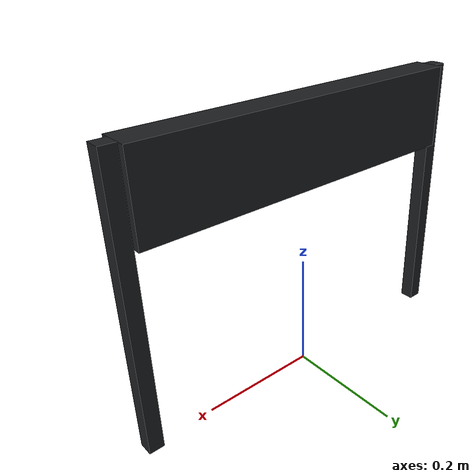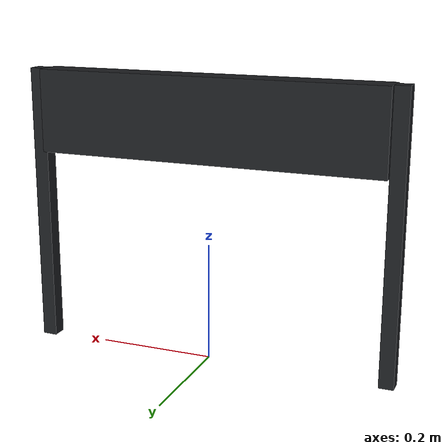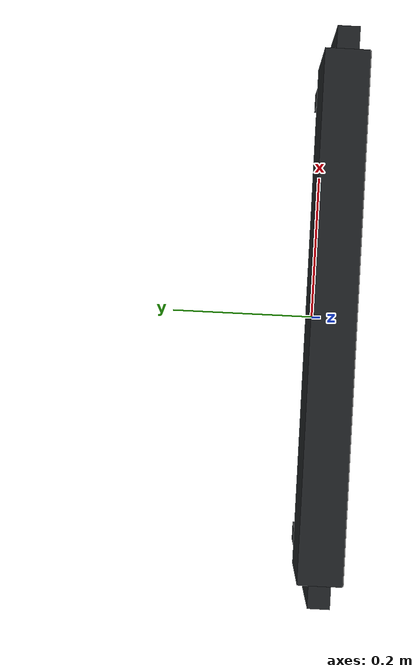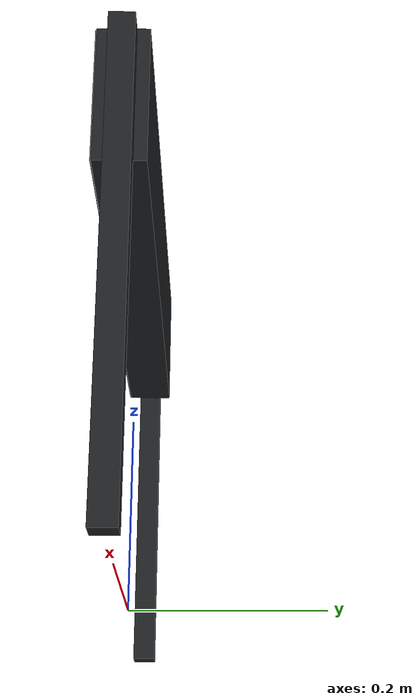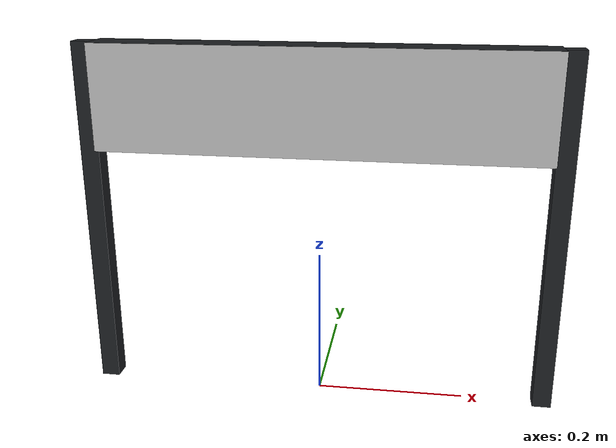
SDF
<?xml version="1.0"?>
<!--
  整面图片序列模型：VisualPlugin 按仿真时间选帧，红 10 秒、黄 5 秒、绿 15 秒。
  GUI 和机器人相机使用相同仿真时间，原生纹理自动计时关闭。
-->
<sdf version="1.5">
  <model name="traffic_light_animated">
    <static>false</static>
    <link name="body">
      <gravity>false</gravity>
      <kinematic>true</kinematic>
      <visual name="housing">
        <pose>0 0 0.41 0 0 0</pose>
        <geometry><box><size>0.59 0.05 0.14</size></box></geometry>
        <material>
          <ambient>0.07 0.08 0.09 1</ambient>
          <diffuse>0.11 0.12 0.13 1</diffuse>
        </material>
      </visual>
      <collision name="housing_collision">
        <pose>0 0 0.41 0 0 0</pose>
        <geometry><box><size>0.59 0.05 0.14</size></box></geometry>
      </collision>
      <visual name="left_leg">
        <pose>-0.3075 0 0.24 0 0 0</pose>
        <geometry><box><size>0.025 0.025 0.48</size></box></geometry>
        <material>
          <ambient>0.07 0.08 0.09 1</ambient>
          <diffuse>0.11 0.12 0.13 1</diffuse>
        </material>
      </visual>
      <collision name="left_leg_collision">
        <pose>-0.3075 0 0.24 0 0 0</pose>
        <geometry><box><size>0.025 0.025 0.48</size></box></geometry>
      </collision>
      <visual name="right_leg">
        <pose>0.3075 0 0.24 0 0 0</pose>
        <geometry><box><size>0.025 0.025 0.48</size></box></geometry>
        <material>
          <ambient>0.07 0.08 0.09 1</ambient>
          <diffuse>0.11 0.12 0.13 1</diffuse>
        </material>
      </visual>
      <collision name="right_leg_collision">
        <pose>0.3075 0 0.24 0 0 0</pose>
        <geometry><box><size>0.025 0.025 0.48</size></box></geometry>
      </collision>

      <visual name="animated_face">
        <pose>0 -0.026 0.41 1.57079632679 0 0</pose>
        <geometry><plane><normal>0 0 1</normal><size>0.59 0.14</size></plane></geometry>
        <material><script>
          <uri>model://traffic_light_animated/materials/scripts</uri>
          <uri>model://traffic_light_animated/materials/textures</uri>
          <name>TrafficLightAnimated/FaceRYGSimTime</name>
        </script></material>
        <cast_shadows>false</cast_shadows>
        <plugin name="traffic_light_animation" filename="libtraffic_light_animation.so"/>
      </visual>
    </link>
  </model>
</sdf>
